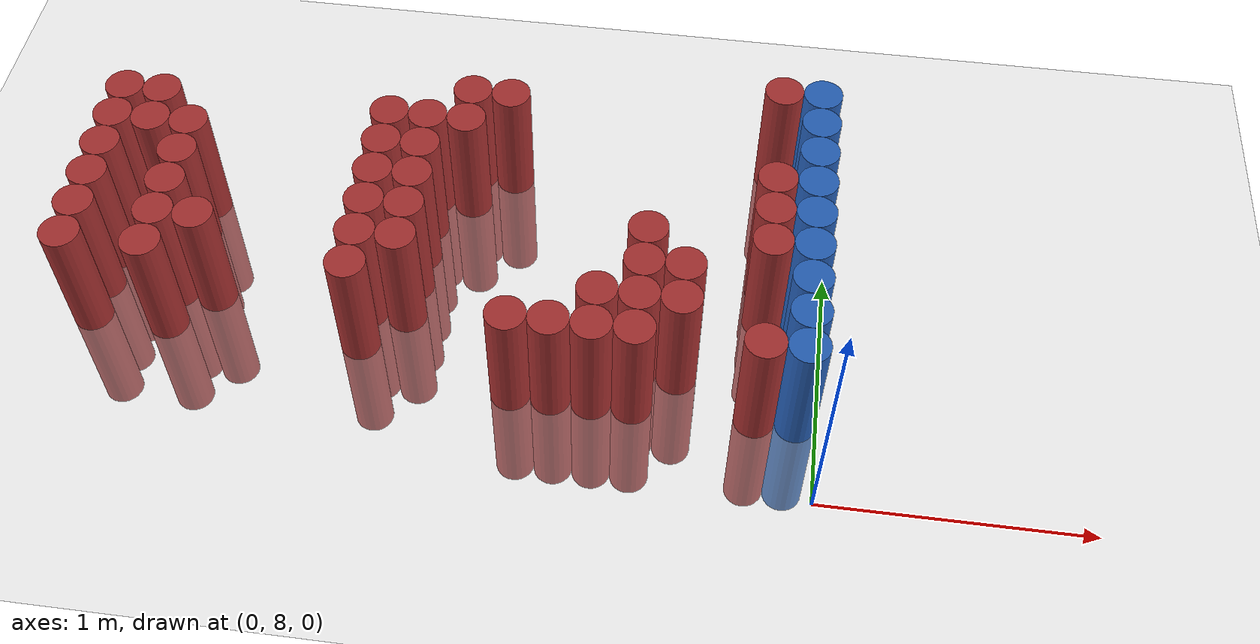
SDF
<sdf version="1.6">
 <world name="default">
  <model name="ground_plane">
   <static>1</static>
   <link name="link">
    <collision name="collision">
     <geometry><plane><normal>0 0 1</normal><size>100 100</size></plane></geometry>
     <surface><friction><ode><mu>100</mu><mu2>50</mu2></ode></friction></surface>
    </collision>
    <visual name="visual">
     <cast_shadows>0</cast_shadows>
     <geometry><plane><normal>0 0 1</normal><size>100 100</size></plane></geometry>
     <material>
      <script><uri>file://media/materials/scripts/gazebo.material</uri><name>Gazebo/Grey</name></script>
     </material>
    </visual>
   </link>
  </model>
  <model name="unit_cylinder_182">
   <static>1</static>
   <pose>-2.775000 8.475000 0.000000 0.000000 0.000000 0.000000</pose>
   <link name="link">
    <inertial>
     <mass>1</mass>
     <inertia><ixx>0.145833</ixx><ixy>0</ixy><ixz>0</ixz><iyy>0.145833</iyy><iyz>0</iyz><izz>0.125</izz></inertia>
    </inertial>
    <collision name="collision">
     <geometry><cylinder><radius>0.075000</radius><length>1</length></cylinder></geometry>
    </collision>
    <visual name="visual">
     <geometry><cylinder><radius>0.075000</radius><length>1</length></cylinder></geometry>
     <material>
      <ambient>0.648000 0.192000 0.192000 1</ambient>
      <diffuse>0.648000 0.192000 0.192000 1</diffuse>
     </material>
     <material>
      <script><name>Gazebo/Grey</name><uri>file://media/materials/scripts/gazebo.material</uri></script>
     </material>
    </visual>
   </link>
  </model>
  <model name="unit_cylinder_183">
   <static>1</static>
   <pose>-2.775000 8.625000 0.000000 0.000000 0.000000 0.000000</pose>
   <link name="link">
    <inertial>
     <mass>1</mass>
     <inertia><ixx>0.145833</ixx><ixy>0</ixy><ixz>0</ixz><iyy>0.145833</iyy><iyz>0</iyz><izz>0.125</izz></inertia>
    </inertial>
    <collision name="collision">
     <geometry><cylinder><radius>0.075000</radius><length>1</length></cylinder></geometry>
    </collision>
    <visual name="visual">
     <geometry><cylinder><radius>0.075000</radius><length>1</length></cylinder></geometry>
     <material>
      <ambient>0.648000 0.192000 0.192000 1</ambient>
      <diffuse>0.648000 0.192000 0.192000 1</diffuse>
     </material>
     <material>
      <script><name>Gazebo/Grey</name><uri>file://media/materials/scripts/gazebo.material</uri></script>
     </material>
    </visual>
   </link>
  </model>
  <model name="unit_cylinder_184">
   <static>1</static>
   <pose>-2.775000 8.775000 0.000000 0.000000 0.000000 0.000000</pose>
   <link name="link">
    <inertial>
     <mass>1</mass>
     <inertia><ixx>0.145833</ixx><ixy>0</ixy><ixz>0</ixz><iyy>0.145833</iyy><iyz>0</iyz><izz>0.125</izz></inertia>
    </inertial>
    <collision name="collision">
     <geometry><cylinder><radius>0.075000</radius><length>1</length></cylinder></geometry>
    </collision>
    <visual name="visual">
     <geometry><cylinder><radius>0.075000</radius><length>1</length></cylinder></geometry>
     <material>
      <ambient>0.648000 0.192000 0.192000 1</ambient>
      <diffuse>0.648000 0.192000 0.192000 1</diffuse>
     </material>
     <material>
      <script><name>Gazebo/Grey</name><uri>file://media/materials/scripts/gazebo.material</uri></script>
     </material>
    </visual>
   </link>
  </model>
  <model name="unit_cylinder_185">
   <static>1</static>
   <pose>-2.775000 8.925000 0.000000 0.000000 0.000000 0.000000</pose>
   <link name="link">
    <inertial>
     <mass>1</mass>
     <inertia><ixx>0.145833</ixx><ixy>0</ixy><ixz>0</ixz><iyy>0.145833</iyy><iyz>0</iyz><izz>0.125</izz></inertia>
    </inertial>
    <collision name="collision">
     <geometry><cylinder><radius>0.075000</radius><length>1</length></cylinder></geometry>
    </collision>
    <visual name="visual">
     <geometry><cylinder><radius>0.075000</radius><length>1</length></cylinder></geometry>
     <material>
      <ambient>0.648000 0.192000 0.192000 1</ambient>
      <diffuse>0.648000 0.192000 0.192000 1</diffuse>
     </material>
     <material>
      <script><name>Gazebo/Grey</name><uri>file://media/materials/scripts/gazebo.material</uri></script>
     </material>
    </visual>
   </link>
  </model>
  <model name="unit_cylinder_186">
   <static>1</static>
   <pose>-2.775000 9.075000 0.000000 0.000000 0.000000 0.000000</pose>
   <link name="link">
    <inertial>
     <mass>1</mass>
     <inertia><ixx>0.145833</ixx><ixy>0</ixy><ixz>0</ixz><iyy>0.145833</iyy><iyz>0</iyz><izz>0.125</izz></inertia>
    </inertial>
    <collision name="collision">
     <geometry><cylinder><radius>0.075000</radius><length>1</length></cylinder></geometry>
    </collision>
    <visual name="visual">
     <geometry><cylinder><radius>0.075000</radius><length>1</length></cylinder></geometry>
     <material>
      <ambient>0.648000 0.192000 0.192000 1</ambient>
      <diffuse>0.648000 0.192000 0.192000 1</diffuse>
     </material>
     <material>
      <script><name>Gazebo/Grey</name><uri>file://media/materials/scripts/gazebo.material</uri></script>
     </material>
    </visual>
   </link>
  </model>
  <model name="unit_cylinder_187">
   <static>1</static>
   <pose>-2.775000 9.225000 0.000000 0.000000 0.000000 0.000000</pose>
   <link name="link">
    <inertial>
     <mass>1</mass>
     <inertia><ixx>0.145833</ixx><ixy>0</ixy><ixz>0</ixz><iyy>0.145833</iyy><iyz>0</iyz><izz>0.125</izz></inertia>
    </inertial>
    <collision name="collision">
     <geometry><cylinder><radius>0.075000</radius><length>1</length></cylinder></geometry>
    </collision>
    <visual name="visual">
     <geometry><cylinder><radius>0.075000</radius><length>1</length></cylinder></geometry>
     <material>
      <ambient>0.648000 0.192000 0.192000 1</ambient>
      <diffuse>0.648000 0.192000 0.192000 1</diffuse>
     </material>
     <material>
      <script><name>Gazebo/Grey</name><uri>file://media/materials/scripts/gazebo.material</uri></script>
     </material>
    </visual>
   </link>
  </model>
  <model name="unit_cylinder_197">
   <static>1</static>
   <pose>-2.625000 9.075000 0.000000 0.000000 0.000000 0.000000</pose>
   <link name="link">
    <inertial>
     <mass>1</mass>
     <inertia><ixx>0.145833</ixx><ixy>0</ixy><ixz>0</ixz><iyy>0.145833</iyy><iyz>0</iyz><izz>0.125</izz></inertia>
    </inertial>
    <collision name="collision">
     <geometry><cylinder><radius>0.075000</radius><length>1</length></cylinder></geometry>
    </collision>
    <visual name="visual">
     <geometry><cylinder><radius>0.075000</radius><length>1</length></cylinder></geometry>
     <material>
      <ambient>0.648000 0.192000 0.192000 1</ambient>
      <diffuse>0.648000 0.192000 0.192000 1</diffuse>
     </material>
     <material>
      <script><name>Gazebo/Grey</name><uri>file://media/materials/scripts/gazebo.material</uri></script>
     </material>
    </visual>
   </link>
  </model>
  <model name="unit_cylinder_198">
   <static>1</static>
   <pose>-2.625000 9.225000 0.000000 0.000000 0.000000 0.000000</pose>
   <link name="link">
    <inertial>
     <mass>1</mass>
     <inertia><ixx>0.145833</ixx><ixy>0</ixy><ixz>0</ixz><iyy>0.145833</iyy><iyz>0</iyz><izz>0.125</izz></inertia>
    </inertial>
    <collision name="collision">
     <geometry><cylinder><radius>0.075000</radius><length>1</length></cylinder></geometry>
    </collision>
    <visual name="visual">
     <geometry><cylinder><radius>0.075000</radius><length>1</length></cylinder></geometry>
     <material>
      <ambient>0.648000 0.192000 0.192000 1</ambient>
      <diffuse>0.648000 0.192000 0.192000 1</diffuse>
     </material>
     <material>
      <script><name>Gazebo/Grey</name><uri>file://media/materials/scripts/gazebo.material</uri></script>
     </material>
    </visual>
   </link>
  </model>
  <model name="unit_cylinder_205">
   <static>1</static>
   <pose>-2.475000 8.475000 0.000000 0.000000 0.000000 0.000000</pose>
   <link name="link">
    <inertial>
     <mass>1</mass>
     <inertia><ixx>0.145833</ixx><ixy>0</ixy><ixz>0</ixz><iyy>0.145833</iyy><iyz>0</iyz><izz>0.125</izz></inertia>
    </inertial>
    <collision name="collision">
     <geometry><cylinder><radius>0.075000</radius><length>1</length></cylinder></geometry>
    </collision>
    <visual name="visual">
     <geometry><cylinder><radius>0.075000</radius><length>1</length></cylinder></geometry>
     <material>
      <ambient>0.648000 0.192000 0.192000 1</ambient>
      <diffuse>0.648000 0.192000 0.192000 1</diffuse>
     </material>
     <material>
      <script><name>Gazebo/Grey</name><uri>file://media/materials/scripts/gazebo.material</uri></script>
     </material>
    </visual>
   </link>
  </model>
  <model name="unit_cylinder_206">
   <static>1</static>
   <pose>-2.475000 8.625000 0.000000 0.000000 0.000000 0.000000</pose>
   <link name="link">
    <inertial>
     <mass>1</mass>
     <inertia><ixx>0.145833</ixx><ixy>0</ixy><ixz>0</ixz><iyy>0.145833</iyy><iyz>0</iyz><izz>0.125</izz></inertia>
    </inertial>
    <collision name="collision">
     <geometry><cylinder><radius>0.075000</radius><length>1</length></cylinder></geometry>
    </collision>
    <visual name="visual">
     <geometry><cylinder><radius>0.075000</radius><length>1</length></cylinder></geometry>
     <material>
      <ambient>0.648000 0.192000 0.192000 1</ambient>
      <diffuse>0.648000 0.192000 0.192000 1</diffuse>
     </material>
     <material>
      <script><name>Gazebo/Grey</name><uri>file://media/materials/scripts/gazebo.material</uri></script>
     </material>
    </visual>
   </link>
  </model>
  <model name="unit_cylinder_207">
   <static>1</static>
   <pose>-2.475000 8.775000 0.000000 0.000000 0.000000 0.000000</pose>
   <link name="link">
    <inertial>
     <mass>1</mass>
     <inertia><ixx>0.145833</ixx><ixy>0</ixy><ixz>0</ixz><iyy>0.145833</iyy><iyz>0</iyz><izz>0.125</izz></inertia>
    </inertial>
    <collision name="collision">
     <geometry><cylinder><radius>0.075000</radius><length>1</length></cylinder></geometry>
    </collision>
    <visual name="visual">
     <geometry><cylinder><radius>0.075000</radius><length>1</length></cylinder></geometry>
     <material>
      <ambient>0.648000 0.192000 0.192000 1</ambient>
      <diffuse>0.648000 0.192000 0.192000 1</diffuse>
     </material>
     <material>
      <script><name>Gazebo/Grey</name><uri>file://media/materials/scripts/gazebo.material</uri></script>
     </material>
    </visual>
   </link>
  </model>
  <model name="unit_cylinder_208">
   <static>1</static>
   <pose>-2.475000 8.925000 0.000000 0.000000 0.000000 0.000000</pose>
   <link name="link">
    <inertial>
     <mass>1</mass>
     <inertia><ixx>0.145833</ixx><ixy>0</ixy><ixz>0</ixz><iyy>0.145833</iyy><iyz>0</iyz><izz>0.125</izz></inertia>
    </inertial>
    <collision name="collision">
     <geometry><cylinder><radius>0.075000</radius><length>1</length></cylinder></geometry>
    </collision>
    <visual name="visual">
     <geometry><cylinder><radius>0.075000</radius><length>1</length></cylinder></geometry>
     <material>
      <ambient>0.648000 0.192000 0.192000 1</ambient>
      <diffuse>0.648000 0.192000 0.192000 1</diffuse>
     </material>
     <material>
      <script><name>Gazebo/Grey</name><uri>file://media/materials/scripts/gazebo.material</uri></script>
     </material>
    </visual>
   </link>
  </model>
  <model name="unit_cylinder_209">
   <static>1</static>
   <pose>-2.475000 9.075000 0.000000 0.000000 0.000000 0.000000</pose>
   <link name="link">
    <inertial>
     <mass>1</mass>
     <inertia><ixx>0.145833</ixx><ixy>0</ixy><ixz>0</ixz><iyy>0.145833</iyy><iyz>0</iyz><izz>0.125</izz></inertia>
    </inertial>
    <collision name="collision">
     <geometry><cylinder><radius>0.075000</radius><length>1</length></cylinder></geometry>
    </collision>
    <visual name="visual">
     <geometry><cylinder><radius>0.075000</radius><length>1</length></cylinder></geometry>
     <material>
      <ambient>0.648000 0.192000 0.192000 1</ambient>
      <diffuse>0.648000 0.192000 0.192000 1</diffuse>
     </material>
     <material>
      <script><name>Gazebo/Grey</name><uri>file://media/materials/scripts/gazebo.material</uri></script>
     </material>
    </visual>
   </link>
  </model>
  <model name="unit_cylinder_212">
   <static>1</static>
   <pose>-2.325000 8.625000 0.000000 0.000000 0.000000 0.000000</pose>
   <link name="link">
    <inertial>
     <mass>1</mass>
     <inertia><ixx>0.145833</ixx><ixy>0</ixy><ixz>0</ixz><iyy>0.145833</iyy><iyz>0</iyz><izz>0.125</izz></inertia>
    </inertial>
    <collision name="collision">
     <geometry><cylinder><radius>0.075000</radius><length>1</length></cylinder></geometry>
    </collision>
    <visual name="visual">
     <geometry><cylinder><radius>0.075000</radius><length>1</length></cylinder></geometry>
     <material>
      <ambient>0.648000 0.192000 0.192000 1</ambient>
      <diffuse>0.648000 0.192000 0.192000 1</diffuse>
     </material>
     <material>
      <script><name>Gazebo/Grey</name><uri>file://media/materials/scripts/gazebo.material</uri></script>
     </material>
    </visual>
   </link>
  </model>
  <model name="unit_cylinder_223">
   <static>1</static>
   <pose>-1.725000 8.475000 0.000000 0.000000 0.000000 0.000000</pose>
   <link name="link">
    <inertial>
     <mass>1</mass>
     <inertia><ixx>0.145833</ixx><ixy>0</ixy><ixz>0</ixz><iyy>0.145833</iyy><iyz>0</iyz><izz>0.125</izz></inertia>
    </inertial>
    <collision name="collision">
     <geometry><cylinder><radius>0.075000</radius><length>1</length></cylinder></geometry>
    </collision>
    <visual name="visual">
     <geometry><cylinder><radius>0.075000</radius><length>1</length></cylinder></geometry>
     <material>
      <ambient>0.648000 0.192000 0.192000 1</ambient>
      <diffuse>0.648000 0.192000 0.192000 1</diffuse>
     </material>
     <material>
      <script><name>Gazebo/Grey</name><uri>file://media/materials/scripts/gazebo.material</uri></script>
     </material>
    </visual>
   </link>
  </model>
  <model name="unit_cylinder_224">
   <static>1</static>
   <pose>-1.725000 8.625000 0.000000 0.000000 0.000000 0.000000</pose>
   <link name="link">
    <inertial>
     <mass>1</mass>
     <inertia><ixx>0.145833</ixx><ixy>0</ixy><ixz>0</ixz><iyy>0.145833</iyy><iyz>0</iyz><izz>0.125</izz></inertia>
    </inertial>
    <collision name="collision">
     <geometry><cylinder><radius>0.075000</radius><length>1</length></cylinder></geometry>
    </collision>
    <visual name="visual">
     <geometry><cylinder><radius>0.075000</radius><length>1</length></cylinder></geometry>
     <material>
      <ambient>0.648000 0.192000 0.192000 1</ambient>
      <diffuse>0.648000 0.192000 0.192000 1</diffuse>
     </material>
     <material>
      <script><name>Gazebo/Grey</name><uri>file://media/materials/scripts/gazebo.material</uri></script>
     </material>
    </visual>
   </link>
  </model>
  <model name="unit_cylinder_225">
   <static>1</static>
   <pose>-1.725000 8.775000 0.000000 0.000000 0.000000 0.000000</pose>
   <link name="link">
    <inertial>
     <mass>1</mass>
     <inertia><ixx>0.145833</ixx><ixy>0</ixy><ixz>0</ixz><iyy>0.145833</iyy><iyz>0</iyz><izz>0.125</izz></inertia>
    </inertial>
    <collision name="collision">
     <geometry><cylinder><radius>0.075000</radius><length>1</length></cylinder></geometry>
    </collision>
    <visual name="visual">
     <geometry><cylinder><radius>0.075000</radius><length>1</length></cylinder></geometry>
     <material>
      <ambient>0.648000 0.192000 0.192000 1</ambient>
      <diffuse>0.648000 0.192000 0.192000 1</diffuse>
     </material>
     <material>
      <script><name>Gazebo/Grey</name><uri>file://media/materials/scripts/gazebo.material</uri></script>
     </material>
    </visual>
   </link>
  </model>
  <model name="unit_cylinder_226">
   <static>1</static>
   <pose>-1.725000 8.925000 0.000000 0.000000 0.000000 0.000000</pose>
   <link name="link">
    <inertial>
     <mass>1</mass>
     <inertia><ixx>0.145833</ixx><ixy>0</ixy><ixz>0</ixz><iyy>0.145833</iyy><iyz>0</iyz><izz>0.125</izz></inertia>
    </inertial>
    <collision name="collision">
     <geometry><cylinder><radius>0.075000</radius><length>1</length></cylinder></geometry>
    </collision>
    <visual name="visual">
     <geometry><cylinder><radius>0.075000</radius><length>1</length></cylinder></geometry>
     <material>
      <ambient>0.648000 0.192000 0.192000 1</ambient>
      <diffuse>0.648000 0.192000 0.192000 1</diffuse>
     </material>
     <material>
      <script><name>Gazebo/Grey</name><uri>file://media/materials/scripts/gazebo.material</uri></script>
     </material>
    </visual>
   </link>
  </model>
  <model name="unit_cylinder_227">
   <static>1</static>
   <pose>-1.725000 9.075000 0.000000 0.000000 0.000000 0.000000</pose>
   <link name="link">
    <inertial>
     <mass>1</mass>
     <inertia><ixx>0.145833</ixx><ixy>0</ixy><ixz>0</ixz><iyy>0.145833</iyy><iyz>0</iyz><izz>0.125</izz></inertia>
    </inertial>
    <collision name="collision">
     <geometry><cylinder><radius>0.075000</radius><length>1</length></cylinder></geometry>
    </collision>
    <visual name="visual">
     <geometry><cylinder><radius>0.075000</radius><length>1</length></cylinder></geometry>
     <material>
      <ambient>0.648000 0.192000 0.192000 1</ambient>
      <diffuse>0.648000 0.192000 0.192000 1</diffuse>
     </material>
     <material>
      <script><name>Gazebo/Grey</name><uri>file://media/materials/scripts/gazebo.material</uri></script>
     </material>
    </visual>
   </link>
  </model>
  <model name="unit_cylinder_228">
   <static>1</static>
   <pose>-1.725000 9.225000 0.000000 0.000000 0.000000 0.000000</pose>
   <link name="link">
    <inertial>
     <mass>1</mass>
     <inertia><ixx>0.145833</ixx><ixy>0</ixy><ixz>0</ixz><iyy>0.145833</iyy><iyz>0</iyz><izz>0.125</izz></inertia>
    </inertial>
    <collision name="collision">
     <geometry><cylinder><radius>0.075000</radius><length>1</length></cylinder></geometry>
    </collision>
    <visual name="visual">
     <geometry><cylinder><radius>0.075000</radius><length>1</length></cylinder></geometry>
     <material>
      <ambient>0.648000 0.192000 0.192000 1</ambient>
      <diffuse>0.648000 0.192000 0.192000 1</diffuse>
     </material>
     <material>
      <script><name>Gazebo/Grey</name><uri>file://media/materials/scripts/gazebo.material</uri></script>
     </material>
    </visual>
   </link>
  </model>
  <model name="unit_cylinder_229">
   <static>1</static>
   <pose>-1.575000 8.625000 0.000000 0.000000 0.000000 0.000000</pose>
   <link name="link">
    <inertial>
     <mass>1</mass>
     <inertia><ixx>0.145833</ixx><ixy>0</ixy><ixz>0</ixz><iyy>0.145833</iyy><iyz>0</iyz><izz>0.125</izz></inertia>
    </inertial>
    <collision name="collision">
     <geometry><cylinder><radius>0.075000</radius><length>1</length></cylinder></geometry>
    </collision>
    <visual name="visual">
     <geometry><cylinder><radius>0.075000</radius><length>1</length></cylinder></geometry>
     <material>
      <ambient>0.648000 0.192000 0.192000 1</ambient>
      <diffuse>0.648000 0.192000 0.192000 1</diffuse>
     </material>
     <material>
      <script><name>Gazebo/Grey</name><uri>file://media/materials/scripts/gazebo.material</uri></script>
     </material>
    </visual>
   </link>
  </model>
  <model name="unit_cylinder_230">
   <static>1</static>
   <pose>-1.575000 8.775000 0.000000 0.000000 0.000000 0.000000</pose>
   <link name="link">
    <inertial>
     <mass>1</mass>
     <inertia><ixx>0.145833</ixx><ixy>0</ixy><ixz>0</ixz><iyy>0.145833</iyy><iyz>0</iyz><izz>0.125</izz></inertia>
    </inertial>
    <collision name="collision">
     <geometry><cylinder><radius>0.075000</radius><length>1</length></cylinder></geometry>
    </collision>
    <visual name="visual">
     <geometry><cylinder><radius>0.075000</radius><length>1</length></cylinder></geometry>
     <material>
      <ambient>0.648000 0.192000 0.192000 1</ambient>
      <diffuse>0.648000 0.192000 0.192000 1</diffuse>
     </material>
     <material>
      <script><name>Gazebo/Grey</name><uri>file://media/materials/scripts/gazebo.material</uri></script>
     </material>
    </visual>
   </link>
  </model>
  <model name="unit_cylinder_231">
   <static>1</static>
   <pose>-1.575000 8.925000 0.000000 0.000000 0.000000 0.000000</pose>
   <link name="link">
    <inertial>
     <mass>1</mass>
     <inertia><ixx>0.145833</ixx><ixy>0</ixy><ixz>0</ixz><iyy>0.145833</iyy><iyz>0</iyz><izz>0.125</izz></inertia>
    </inertial>
    <collision name="collision">
     <geometry><cylinder><radius>0.075000</radius><length>1</length></cylinder></geometry>
    </collision>
    <visual name="visual">
     <geometry><cylinder><radius>0.075000</radius><length>1</length></cylinder></geometry>
     <material>
      <ambient>0.648000 0.192000 0.192000 1</ambient>
      <diffuse>0.648000 0.192000 0.192000 1</diffuse>
     </material>
     <material>
      <script><name>Gazebo/Grey</name><uri>file://media/materials/scripts/gazebo.material</uri></script>
     </material>
    </visual>
   </link>
  </model>
  <model name="unit_cylinder_232">
   <static>1</static>
   <pose>-1.575000 9.075000 0.000000 0.000000 0.000000 0.000000</pose>
   <link name="link">
    <inertial>
     <mass>1</mass>
     <inertia><ixx>0.145833</ixx><ixy>0</ixy><ixz>0</ixz><iyy>0.145833</iyy><iyz>0</iyz><izz>0.125</izz></inertia>
    </inertial>
    <collision name="collision">
     <geometry><cylinder><radius>0.075000</radius><length>1</length></cylinder></geometry>
    </collision>
    <visual name="visual">
     <geometry><cylinder><radius>0.075000</radius><length>1</length></cylinder></geometry>
     <material>
      <ambient>0.648000 0.192000 0.192000 1</ambient>
      <diffuse>0.648000 0.192000 0.192000 1</diffuse>
     </material>
     <material>
      <script><name>Gazebo/Grey</name><uri>file://media/materials/scripts/gazebo.material</uri></script>
     </material>
    </visual>
   </link>
  </model>
  <model name="unit_cylinder_233">
   <static>1</static>
   <pose>-1.575000 9.225000 0.000000 0.000000 0.000000 0.000000</pose>
   <link name="link">
    <inertial>
     <mass>1</mass>
     <inertia><ixx>0.145833</ixx><ixy>0</ixy><ixz>0</ixz><iyy>0.145833</iyy><iyz>0</iyz><izz>0.125</izz></inertia>
    </inertial>
    <collision name="collision">
     <geometry><cylinder><radius>0.075000</radius><length>1</length></cylinder></geometry>
    </collision>
    <visual name="visual">
     <geometry><cylinder><radius>0.075000</radius><length>1</length></cylinder></geometry>
     <material>
      <ambient>0.648000 0.192000 0.192000 1</ambient>
      <diffuse>0.648000 0.192000 0.192000 1</diffuse>
     </material>
     <material>
      <script><name>Gazebo/Grey</name><uri>file://media/materials/scripts/gazebo.material</uri></script>
     </material>
    </visual>
   </link>
  </model>
  <model name="unit_cylinder_234">
   <static>1</static>
   <pose>-1.425000 9.225000 0.000000 0.000000 0.000000 0.000000</pose>
   <link name="link">
    <inertial>
     <mass>1</mass>
     <inertia><ixx>0.145833</ixx><ixy>0</ixy><ixz>0</ixz><iyy>0.145833</iyy><iyz>0</iyz><izz>0.125</izz></inertia>
    </inertial>
    <collision name="collision">
     <geometry><cylinder><radius>0.075000</radius><length>1</length></cylinder></geometry>
    </collision>
    <visual name="visual">
     <geometry><cylinder><radius>0.075000</radius><length>1</length></cylinder></geometry>
     <material>
      <ambient>0.648000 0.192000 0.192000 1</ambient>
      <diffuse>0.648000 0.192000 0.192000 1</diffuse>
     </material>
     <material>
      <script><name>Gazebo/Grey</name><uri>file://media/materials/scripts/gazebo.material</uri></script>
     </material>
    </visual>
   </link>
  </model>
  <model name="unit_cylinder_235">
   <static>1</static>
   <pose>-1.425000 9.375000 0.000000 0.000000 0.000000 0.000000</pose>
   <link name="link">
    <inertial>
     <mass>1</mass>
     <inertia><ixx>0.145833</ixx><ixy>0</ixy><ixz>0</ixz><iyy>0.145833</iyy><iyz>0</iyz><izz>0.125</izz></inertia>
    </inertial>
    <collision name="collision">
     <geometry><cylinder><radius>0.075000</radius><length>1</length></cylinder></geometry>
    </collision>
    <visual name="visual">
     <geometry><cylinder><radius>0.075000</radius><length>1</length></cylinder></geometry>
     <material>
      <ambient>0.648000 0.192000 0.192000 1</ambient>
      <diffuse>0.648000 0.192000 0.192000 1</diffuse>
     </material>
     <material>
      <script><name>Gazebo/Grey</name><uri>file://media/materials/scripts/gazebo.material</uri></script>
     </material>
    </visual>
   </link>
  </model>
  <model name="unit_cylinder_238">
   <static>1</static>
   <pose>-1.275000 9.375000 0.000000 0.000000 0.000000 0.000000</pose>
   <link name="link">
    <inertial>
     <mass>1</mass>
     <inertia><ixx>0.145833</ixx><ixy>0</ixy><ixz>0</ixz><iyy>0.145833</iyy><iyz>0</iyz><izz>0.125</izz></inertia>
    </inertial>
    <collision name="collision">
     <geometry><cylinder><radius>0.075000</radius><length>1</length></cylinder></geometry>
    </collision>
    <visual name="visual">
     <geometry><cylinder><radius>0.075000</radius><length>1</length></cylinder></geometry>
     <material>
      <ambient>0.648000 0.192000 0.192000 1</ambient>
      <diffuse>0.648000 0.192000 0.192000 1</diffuse>
     </material>
     <material>
      <script><name>Gazebo/Grey</name><uri>file://media/materials/scripts/gazebo.material</uri></script>
     </material>
    </visual>
   </link>
  </model>
  <model name="unit_cylinder_242">
   <static>1</static>
   <pose>-1.125000 8.325000 0.000000 0.000000 0.000000 0.000000</pose>
   <link name="link">
    <inertial>
     <mass>1</mass>
     <inertia><ixx>0.145833</ixx><ixy>0</ixy><ixz>0</ixz><iyy>0.145833</iyy><iyz>0</iyz><izz>0.125</izz></inertia>
    </inertial>
    <collision name="collision">
     <geometry><cylinder><radius>0.075000</radius><length>1</length></cylinder></geometry>
    </collision>
    <visual name="visual">
     <geometry><cylinder><radius>0.075000</radius><length>1</length></cylinder></geometry>
     <material>
      <ambient>0.648000 0.192000 0.192000 1</ambient>
      <diffuse>0.648000 0.192000 0.192000 1</diffuse>
     </material>
     <material>
      <script><name>Gazebo/Grey</name><uri>file://media/materials/scripts/gazebo.material</uri></script>
     </material>
    </visual>
   </link>
  </model>
  <model name="unit_cylinder_246">
   <static>1</static>
   <pose>-0.975000 8.325000 0.000000 0.000000 0.000000 0.000000</pose>
   <link name="link">
    <inertial>
     <mass>1</mass>
     <inertia><ixx>0.145833</ixx><ixy>0</ixy><ixz>0</ixz><iyy>0.145833</iyy><iyz>0</iyz><izz>0.125</izz></inertia>
    </inertial>
    <collision name="collision">
     <geometry><cylinder><radius>0.075000</radius><length>1</length></cylinder></geometry>
    </collision>
    <visual name="visual">
     <geometry><cylinder><radius>0.075000</radius><length>1</length></cylinder></geometry>
     <material>
      <ambient>0.648000 0.192000 0.192000 1</ambient>
      <diffuse>0.648000 0.192000 0.192000 1</diffuse>
     </material>
     <material>
      <script><name>Gazebo/Grey</name><uri>file://media/materials/scripts/gazebo.material</uri></script>
     </material>
    </visual>
   </link>
  </model>
  <model name="unit_cylinder_248">
   <static>1</static>
   <pose>-0.825000 8.325000 0.000000 0.000000 0.000000 0.000000</pose>
   <link name="link">
    <inertial>
     <mass>1</mass>
     <inertia><ixx>0.145833</ixx><ixy>0</ixy><ixz>0</ixz><iyy>0.145833</iyy><iyz>0</iyz><izz>0.125</izz></inertia>
    </inertial>
    <collision name="collision">
     <geometry><cylinder><radius>0.075000</radius><length>1</length></cylinder></geometry>
    </collision>
    <visual name="visual">
     <geometry><cylinder><radius>0.075000</radius><length>1</length></cylinder></geometry>
     <material>
      <ambient>0.648000 0.192000 0.192000 1</ambient>
      <diffuse>0.648000 0.192000 0.192000 1</diffuse>
     </material>
     <material>
      <script><name>Gazebo/Grey</name><uri>file://media/materials/scripts/gazebo.material</uri></script>
     </material>
    </visual>
   </link>
  </model>
  <model name="unit_cylinder_249">
   <static>1</static>
   <pose>-0.825000 8.475000 0.000000 0.000000 0.000000 0.000000</pose>
   <link name="link">
    <inertial>
     <mass>1</mass>
     <inertia><ixx>0.145833</ixx><ixy>0</ixy><ixz>0</ixz><iyy>0.145833</iyy><iyz>0</iyz><izz>0.125</izz></inertia>
    </inertial>
    <collision name="collision">
     <geometry><cylinder><radius>0.075000</radius><length>1</length></cylinder></geometry>
    </collision>
    <visual name="visual">
     <geometry><cylinder><radius>0.075000</radius><length>1</length></cylinder></geometry>
     <material>
      <ambient>0.648000 0.192000 0.192000 1</ambient>
      <diffuse>0.648000 0.192000 0.192000 1</diffuse>
     </material>
     <material>
      <script><name>Gazebo/Grey</name><uri>file://media/materials/scripts/gazebo.material</uri></script>
     </material>
    </visual>
   </link>
  </model>
  <model name="unit_cylinder_253">
   <static>1</static>
   <pose>-0.675000 8.325000 0.000000 0.000000 0.000000 0.000000</pose>
   <link name="link">
    <inertial>
     <mass>1</mass>
     <inertia><ixx>0.145833</ixx><ixy>0</ixy><ixz>0</ixz><iyy>0.145833</iyy><iyz>0</iyz><izz>0.125</izz></inertia>
    </inertial>
    <collision name="collision">
     <geometry><cylinder><radius>0.075000</radius><length>1</length></cylinder></geometry>
    </collision>
    <visual name="visual">
     <geometry><cylinder><radius>0.075000</radius><length>1</length></cylinder></geometry>
     <material>
      <ambient>0.648000 0.192000 0.192000 1</ambient>
      <diffuse>0.648000 0.192000 0.192000 1</diffuse>
     </material>
     <material>
      <script><name>Gazebo/Grey</name><uri>file://media/materials/scripts/gazebo.material</uri></script>
     </material>
    </visual>
   </link>
  </model>
  <model name="unit_cylinder_254">
   <static>1</static>
   <pose>-0.675000 8.475000 0.000000 0.000000 0.000000 0.000000</pose>
   <link name="link">
    <inertial>
     <mass>1</mass>
     <inertia><ixx>0.145833</ixx><ixy>0</ixy><ixz>0</ixz><iyy>0.145833</iyy><iyz>0</iyz><izz>0.125</izz></inertia>
    </inertial>
    <collision name="collision">
     <geometry><cylinder><radius>0.075000</radius><length>1</length></cylinder></geometry>
    </collision>
    <visual name="visual">
     <geometry><cylinder><radius>0.075000</radius><length>1</length></cylinder></geometry>
     <material>
      <ambient>0.648000 0.192000 0.192000 1</ambient>
      <diffuse>0.648000 0.192000 0.192000 1</diffuse>
     </material>
     <material>
      <script><name>Gazebo/Grey</name><uri>file://media/materials/scripts/gazebo.material</uri></script>
     </material>
    </visual>
   </link>
  </model>
  <model name="unit_cylinder_255">
   <static>1</static>
   <pose>-0.675000 8.625000 0.000000 0.000000 0.000000 0.000000</pose>
   <link name="link">
    <inertial>
     <mass>1</mass>
     <inertia><ixx>0.145833</ixx><ixy>0</ixy><ixz>0</ixz><iyy>0.145833</iyy><iyz>0</iyz><izz>0.125</izz></inertia>
    </inertial>
    <collision name="collision">
     <geometry><cylinder><radius>0.075000</radius><length>1</length></cylinder></geometry>
    </collision>
    <visual name="visual">
     <geometry><cylinder><radius>0.075000</radius><length>1</length></cylinder></geometry>
     <material>
      <ambient>0.648000 0.192000 0.192000 1</ambient>
      <diffuse>0.648000 0.192000 0.192000 1</diffuse>
     </material>
     <material>
      <script><name>Gazebo/Grey</name><uri>file://media/materials/scripts/gazebo.material</uri></script>
     </material>
    </visual>
   </link>
  </model>
  <model name="unit_cylinder_256">
   <static>1</static>
   <pose>-0.675000 8.775000 0.000000 0.000000 0.000000 0.000000</pose>
   <link name="link">
    <inertial>
     <mass>1</mass>
     <inertia><ixx>0.145833</ixx><ixy>0</ixy><ixz>0</ixz><iyy>0.145833</iyy><iyz>0</iyz><izz>0.125</izz></inertia>
    </inertial>
    <collision name="collision">
     <geometry><cylinder><radius>0.075000</radius><length>1</length></cylinder></geometry>
    </collision>
    <visual name="visual">
     <geometry><cylinder><radius>0.075000</radius><length>1</length></cylinder></geometry>
     <material>
      <ambient>0.648000 0.192000 0.192000 1</ambient>
      <diffuse>0.648000 0.192000 0.192000 1</diffuse>
     </material>
     <material>
      <script><name>Gazebo/Grey</name><uri>file://media/materials/scripts/gazebo.material</uri></script>
     </material>
    </visual>
   </link>
  </model>
  <model name="unit_cylinder_258">
   <static>1</static>
   <pose>-0.525000 8.475000 0.000000 0.000000 0.000000 0.000000</pose>
   <link name="link">
    <inertial>
     <mass>1</mass>
     <inertia><ixx>0.145833</ixx><ixy>0</ixy><ixz>0</ixz><iyy>0.145833</iyy><iyz>0</iyz><izz>0.125</izz></inertia>
    </inertial>
    <collision name="collision">
     <geometry><cylinder><radius>0.075000</radius><length>1</length></cylinder></geometry>
    </collision>
    <visual name="visual">
     <geometry><cylinder><radius>0.075000</radius><length>1</length></cylinder></geometry>
     <material>
      <ambient>0.648000 0.192000 0.192000 1</ambient>
      <diffuse>0.648000 0.192000 0.192000 1</diffuse>
     </material>
     <material>
      <script><name>Gazebo/Grey</name><uri>file://media/materials/scripts/gazebo.material</uri></script>
     </material>
    </visual>
   </link>
  </model>
  <model name="unit_cylinder_259">
   <static>1</static>
   <pose>-0.525000 8.625000 0.000000 0.000000 0.000000 0.000000</pose>
   <link name="link">
    <inertial>
     <mass>1</mass>
     <inertia><ixx>0.145833</ixx><ixy>0</ixy><ixz>0</ixz><iyy>0.145833</iyy><iyz>0</iyz><izz>0.125</izz></inertia>
    </inertial>
    <collision name="collision">
     <geometry><cylinder><radius>0.075000</radius><length>1</length></cylinder></geometry>
    </collision>
    <visual name="visual">
     <geometry><cylinder><radius>0.075000</radius><length>1</length></cylinder></geometry>
     <material>
      <ambient>0.648000 0.192000 0.192000 1</ambient>
      <diffuse>0.648000 0.192000 0.192000 1</diffuse>
     </material>
     <material>
      <script><name>Gazebo/Grey</name><uri>file://media/materials/scripts/gazebo.material</uri></script>
     </material>
    </visual>
   </link>
  </model>
  <model name="unit_cylinder_277">
   <static>1</static>
   <pose>-0.225000 8.325000 0.000000 0.000000 0.000000 0.000000</pose>
   <link name="link">
    <inertial>
     <mass>1</mass>
     <inertia><ixx>0.145833</ixx><ixy>0</ixy><ixz>0</ixz><iyy>0.145833</iyy><iyz>0</iyz><izz>0.125</izz></inertia>
    </inertial>
    <collision name="collision">
     <geometry><cylinder><radius>0.075000</radius><length>1</length></cylinder></geometry>
    </collision>
    <visual name="visual">
     <geometry><cylinder><radius>0.075000</radius><length>1</length></cylinder></geometry>
     <material>
      <ambient>0.648000 0.192000 0.192000 1</ambient>
      <diffuse>0.648000 0.192000 0.192000 1</diffuse>
     </material>
     <material>
      <script><name>Gazebo/Grey</name><uri>file://media/materials/scripts/gazebo.material</uri></script>
     </material>
    </visual>
   </link>
  </model>
  <model name="unit_cylinder_278">
   <static>1</static>
   <pose>-0.225000 8.775000 0.000000 0.000000 0.000000 0.000000</pose>
   <link name="link">
    <inertial>
     <mass>1</mass>
     <inertia><ixx>0.145833</ixx><ixy>0</ixy><ixz>0</ixz><iyy>0.145833</iyy><iyz>0</iyz><izz>0.125</izz></inertia>
    </inertial>
    <collision name="collision">
     <geometry><cylinder><radius>0.075000</radius><length>1</length></cylinder></geometry>
    </collision>
    <visual name="visual">
     <geometry><cylinder><radius>0.075000</radius><length>1</length></cylinder></geometry>
     <material>
      <ambient>0.648000 0.192000 0.192000 1</ambient>
      <diffuse>0.648000 0.192000 0.192000 1</diffuse>
     </material>
     <material>
      <script><name>Gazebo/Grey</name><uri>file://media/materials/scripts/gazebo.material</uri></script>
     </material>
    </visual>
   </link>
  </model>
  <model name="unit_cylinder_279">
   <static>1</static>
   <pose>-0.225000 8.925000 0.000000 0.000000 0.000000 0.000000</pose>
   <link name="link">
    <inertial>
     <mass>1</mass>
     <inertia><ixx>0.145833</ixx><ixy>0</ixy><ixz>0</ixz><iyy>0.145833</iyy><iyz>0</iyz><izz>0.125</izz></inertia>
    </inertial>
    <collision name="collision">
     <geometry><cylinder><radius>0.075000</radius><length>1</length></cylinder></geometry>
    </collision>
    <visual name="visual">
     <geometry><cylinder><radius>0.075000</radius><length>1</length></cylinder></geometry>
     <material>
      <ambient>0.648000 0.192000 0.192000 1</ambient>
      <diffuse>0.648000 0.192000 0.192000 1</diffuse>
     </material>
     <material>
      <script><name>Gazebo/Grey</name><uri>file://media/materials/scripts/gazebo.material</uri></script>
     </material>
    </visual>
   </link>
  </model>
  <model name="unit_cylinder_280">
   <static>1</static>
   <pose>-0.225000 9.075000 0.000000 0.000000 0.000000 0.000000</pose>
   <link name="link">
    <inertial>
     <mass>1</mass>
     <inertia><ixx>0.145833</ixx><ixy>0</ixy><ixz>0</ixz><iyy>0.145833</iyy><iyz>0</iyz><izz>0.125</izz></inertia>
    </inertial>
    <collision name="collision">
     <geometry><cylinder><radius>0.075000</radius><length>1</length></cylinder></geometry>
    </collision>
    <visual name="visual">
     <geometry><cylinder><radius>0.075000</radius><length>1</length></cylinder></geometry>
     <material>
      <ambient>0.648000 0.192000 0.192000 1</ambient>
      <diffuse>0.648000 0.192000 0.192000 1</diffuse>
     </material>
     <material>
      <script><name>Gazebo/Grey</name><uri>file://media/materials/scripts/gazebo.material</uri></script>
     </material>
    </visual>
   </link>
  </model>
  <model name="unit_cylinder_281">
   <static>1</static>
   <pose>-0.225000 9.525000 0.000000 0.000000 0.000000 0.000000</pose>
   <link name="link">
    <inertial>
     <mass>1</mass>
     <inertia><ixx>0.145833</ixx><ixy>0</ixy><ixz>0</ixz><iyy>0.145833</iyy><iyz>0</iyz><izz>0.125</izz></inertia>
    </inertial>
    <collision name="collision">
     <geometry><cylinder><radius>0.075000</radius><length>1</length></cylinder></geometry>
    </collision>
    <visual name="visual">
     <geometry><cylinder><radius>0.075000</radius><length>1</length></cylinder></geometry>
     <material>
      <ambient>0.648000 0.192000 0.192000 1</ambient>
      <diffuse>0.648000 0.192000 0.192000 1</diffuse>
     </material>
     <material>
      <script><name>Gazebo/Grey</name><uri>file://media/materials/scripts/gazebo.material</uri></script>
     </material>
    </visual>
   </link>
  </model>
  <model name="unit_cylinder_303">
   <static>1</static>
   <pose>-0.075000 8.325000 0.000000 0.000000 0.000000 0.000000</pose>
   <link name="link">
    <inertial>
     <mass>1</mass>
     <inertia><ixx>0.145833</ixx><ixy>0</ixy><ixz>0</ixz><iyy>0.145833</iyy><iyz>0</iyz><izz>0.125</izz></inertia>
    </inertial>
    <collision name="collision">
     <geometry><cylinder><radius>0.075000</radius><length>1</length></cylinder></geometry>
    </collision>
    <visual name="visual">
     <geometry><cylinder><radius>0.075000</radius><length>1</length></cylinder></geometry>
     <material>
      <ambient>0.152000 0.379000 0.720000 1</ambient>
      <diffuse>0.152000 0.379000 0.720000 1</diffuse>
     </material>
     <material>
      <script><name>Gazebo/Grey</name><uri>file://media/materials/scripts/gazebo.material</uri></script>
     </material>
    </visual>
   </link>
  </model>
  <model name="unit_cylinder_304">
   <static>1</static>
   <pose>-0.075000 8.475000 0.000000 0.000000 0.000000 0.000000</pose>
   <link name="link">
    <inertial>
     <mass>1</mass>
     <inertia><ixx>0.145833</ixx><ixy>0</ixy><ixz>0</ixz><iyy>0.145833</iyy><iyz>0</iyz><izz>0.125</izz></inertia>
    </inertial>
    <collision name="collision">
     <geometry><cylinder><radius>0.075000</radius><length>1</length></cylinder></geometry>
    </collision>
    <visual name="visual">
     <geometry><cylinder><radius>0.075000</radius><length>1</length></cylinder></geometry>
     <material>
      <ambient>0.152000 0.379000 0.720000 1</ambient>
      <diffuse>0.152000 0.379000 0.720000 1</diffuse>
     </material>
     <material>
      <script><name>Gazebo/Grey</name><uri>file://media/materials/scripts/gazebo.material</uri></script>
     </material>
    </visual>
   </link>
  </model>
  <model name="unit_cylinder_305">
   <static>1</static>
   <pose>-0.075000 8.625000 0.000000 0.000000 0.000000 0.000000</pose>
   <link name="link">
    <inertial>
     <mass>1</mass>
     <inertia><ixx>0.145833</ixx><ixy>0</ixy><ixz>0</ixz><iyy>0.145833</iyy><iyz>0</iyz><izz>0.125</izz></inertia>
    </inertial>
    <collision name="collision">
     <geometry><cylinder><radius>0.075000</radius><length>1</length></cylinder></geometry>
    </collision>
    <visual name="visual">
     <geometry><cylinder><radius>0.075000</radius><length>1</length></cylinder></geometry>
     <material>
      <ambient>0.152000 0.379000 0.720000 1</ambient>
      <diffuse>0.152000 0.379000 0.720000 1</diffuse>
     </material>
     <material>
      <script><name>Gazebo/Grey</name><uri>file://media/materials/scripts/gazebo.material</uri></script>
     </material>
    </visual>
   </link>
  </model>
  <model name="unit_cylinder_306">
   <static>1</static>
   <pose>-0.075000 8.775000 0.000000 0.000000 0.000000 0.000000</pose>
   <link name="link">
    <inertial>
     <mass>1</mass>
     <inertia><ixx>0.145833</ixx><ixy>0</ixy><ixz>0</ixz><iyy>0.145833</iyy><iyz>0</iyz><izz>0.125</izz></inertia>
    </inertial>
    <collision name="collision">
     <geometry><cylinder><radius>0.075000</radius><length>1</length></cylinder></geometry>
    </collision>
    <visual name="visual">
     <geometry><cylinder><radius>0.075000</radius><length>1</length></cylinder></geometry>
     <material>
      <ambient>0.152000 0.379000 0.720000 1</ambient>
      <diffuse>0.152000 0.379000 0.720000 1</diffuse>
     </material>
     <material>
      <script><name>Gazebo/Grey</name><uri>file://media/materials/scripts/gazebo.material</uri></script>
     </material>
    </visual>
   </link>
  </model>
  <model name="unit_cylinder_307">
   <static>1</static>
   <pose>-0.075000 8.925000 0.000000 0.000000 0.000000 0.000000</pose>
   <link name="link">
    <inertial>
     <mass>1</mass>
     <inertia><ixx>0.145833</ixx><ixy>0</ixy><ixz>0</ixz><iyy>0.145833</iyy><iyz>0</iyz><izz>0.125</izz></inertia>
    </inertial>
    <collision name="collision">
     <geometry><cylinder><radius>0.075000</radius><length>1</length></cylinder></geometry>
    </collision>
    <visual name="visual">
     <geometry><cylinder><radius>0.075000</radius><length>1</length></cylinder></geometry>
     <material>
      <ambient>0.152000 0.379000 0.720000 1</ambient>
      <diffuse>0.152000 0.379000 0.720000 1</diffuse>
     </material>
     <material>
      <script><name>Gazebo/Grey</name><uri>file://media/materials/scripts/gazebo.material</uri></script>
     </material>
    </visual>
   </link>
  </model>
  <model name="unit_cylinder_308">
   <static>1</static>
   <pose>-0.075000 9.075000 0.000000 0.000000 0.000000 0.000000</pose>
   <link name="link">
    <inertial>
     <mass>1</mass>
     <inertia><ixx>0.145833</ixx><ixy>0</ixy><ixz>0</ixz><iyy>0.145833</iyy><iyz>0</iyz><izz>0.125</izz></inertia>
    </inertial>
    <collision name="collision">
     <geometry><cylinder><radius>0.075000</radius><length>1</length></cylinder></geometry>
    </collision>
    <visual name="visual">
     <geometry><cylinder><radius>0.075000</radius><length>1</length></cylinder></geometry>
     <material>
      <ambient>0.152000 0.379000 0.720000 1</ambient>
      <diffuse>0.152000 0.379000 0.720000 1</diffuse>
     </material>
     <material>
      <script><name>Gazebo/Grey</name><uri>file://media/materials/scripts/gazebo.material</uri></script>
     </material>
    </visual>
   </link>
  </model>
  <model name="unit_cylinder_309">
   <static>1</static>
   <pose>-0.075000 9.225000 0.000000 0.000000 0.000000 0.000000</pose>
   <link name="link">
    <inertial>
     <mass>1</mass>
     <inertia><ixx>0.145833</ixx><ixy>0</ixy><ixz>0</ixz><iyy>0.145833</iyy><iyz>0</iyz><izz>0.125</izz></inertia>
    </inertial>
    <collision name="collision">
     <geometry><cylinder><radius>0.075000</radius><length>1</length></cylinder></geometry>
    </collision>
    <visual name="visual">
     <geometry><cylinder><radius>0.075000</radius><length>1</length></cylinder></geometry>
     <material>
      <ambient>0.152000 0.379000 0.720000 1</ambient>
      <diffuse>0.152000 0.379000 0.720000 1</diffuse>
     </material>
     <material>
      <script><name>Gazebo/Grey</name><uri>file://media/materials/scripts/gazebo.material</uri></script>
     </material>
    </visual>
   </link>
  </model>
  <model name="unit_cylinder_310">
   <static>1</static>
   <pose>-0.075000 9.375000 0.000000 0.000000 0.000000 0.000000</pose>
   <link name="link">
    <inertial>
     <mass>1</mass>
     <inertia><ixx>0.145833</ixx><ixy>0</ixy><ixz>0</ixz><iyy>0.145833</iyy><iyz>0</iyz><izz>0.125</izz></inertia>
    </inertial>
    <collision name="collision">
     <geometry><cylinder><radius>0.075000</radius><length>1</length></cylinder></geometry>
    </collision>
    <visual name="visual">
     <geometry><cylinder><radius>0.075000</radius><length>1</length></cylinder></geometry>
     <material>
      <ambient>0.152000 0.379000 0.720000 1</ambient>
      <diffuse>0.152000 0.379000 0.720000 1</diffuse>
     </material>
     <material>
      <script><name>Gazebo/Grey</name><uri>file://media/materials/scripts/gazebo.material</uri></script>
     </material>
    </visual>
   </link>
  </model>
  <model name="unit_cylinder_311">
   <static>1</static>
   <pose>-0.075000 9.525000 0.000000 0.000000 0.000000 0.000000</pose>
   <link name="link">
    <inertial>
     <mass>1</mass>
     <inertia><ixx>0.145833</ixx><ixy>0</ixy><ixz>0</ixz><iyy>0.145833</iyy><iyz>0</iyz><izz>0.125</izz></inertia>
    </inertial>
    <collision name="collision">
     <geometry><cylinder><radius>0.075000</radius><length>1</length></cylinder></geometry>
    </collision>
    <visual name="visual">
     <geometry><cylinder><radius>0.075000</radius><length>1</length></cylinder></geometry>
     <material>
      <ambient>0.152000 0.379000 0.720000 1</ambient>
      <diffuse>0.152000 0.379000 0.720000 1</diffuse>
     </material>
     <material>
      <script><name>Gazebo/Grey</name><uri>file://media/materials/scripts/gazebo.material</uri></script>
     </material>
    </visual>
   </link>
  </model>
 </world>
</sdf>
